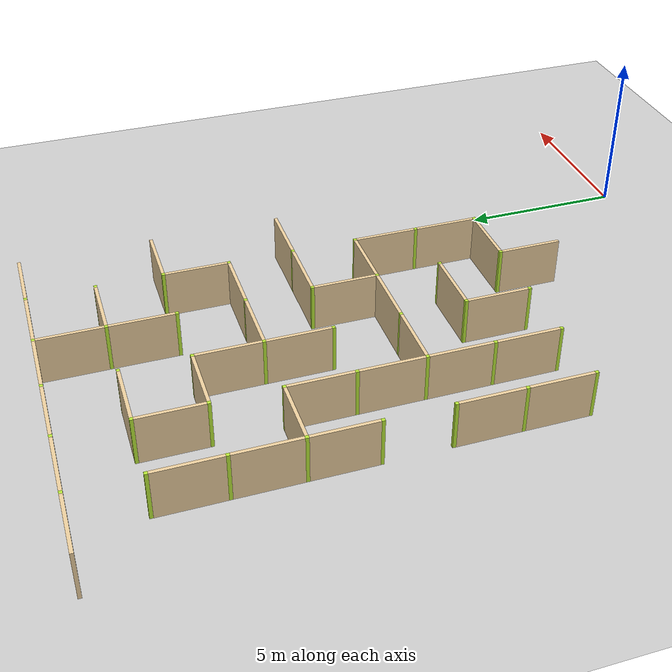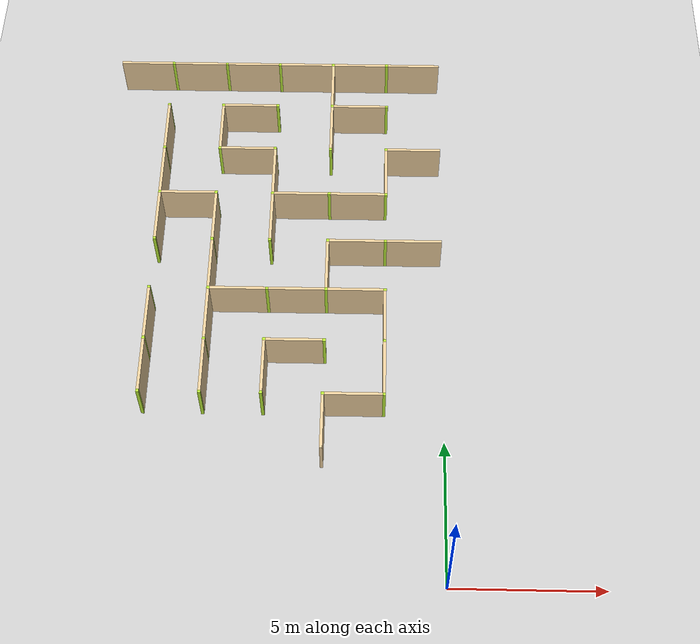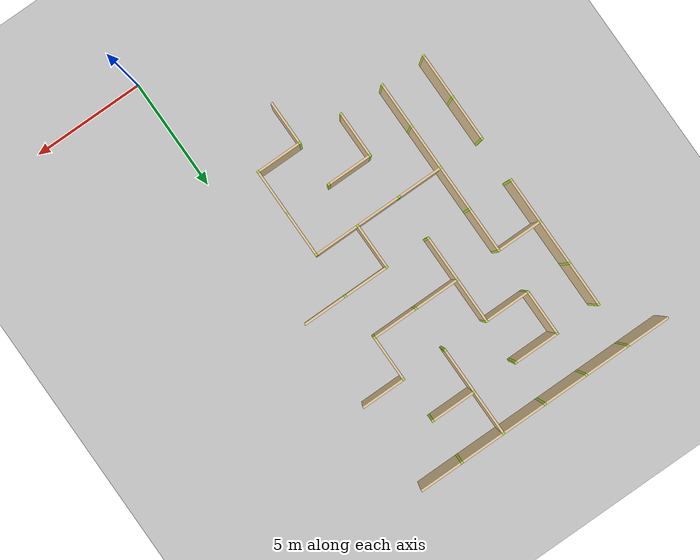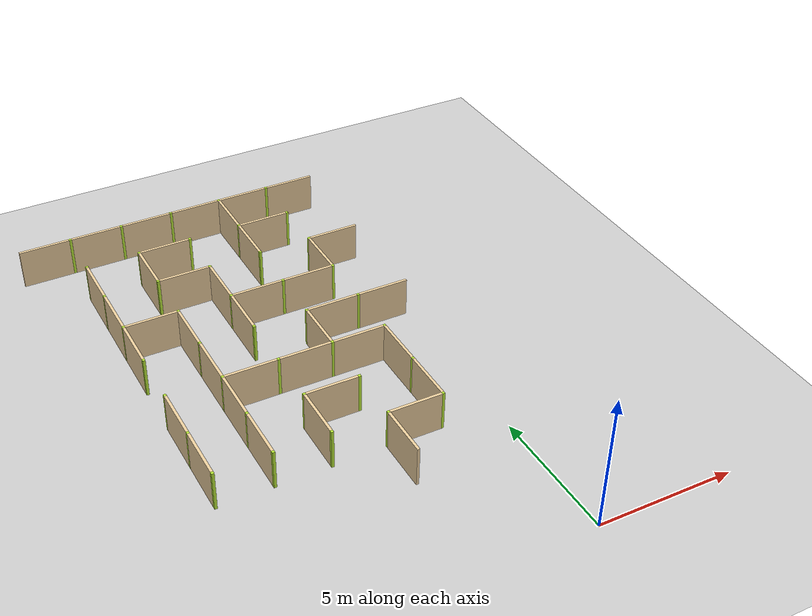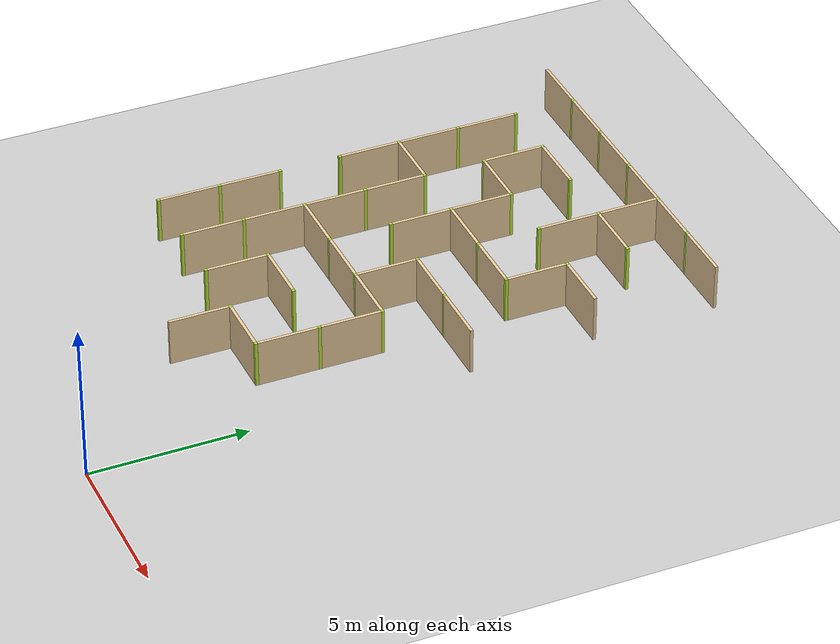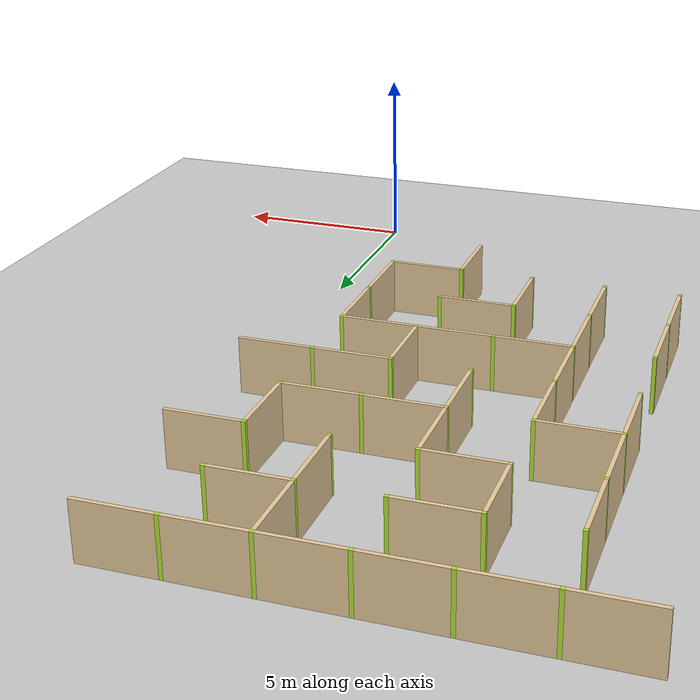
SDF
<sdf version="1.4">
 <world name="maze_world">
  <model name="ground">
   <static>true</static>
   <link name="ground_link">
    <collision name="collision1"><geometry><plane><normal>0 0 1</normal></plane></geometry></collision>
    <visual name="visual1"><geometry><plane><normal>0 0 1</normal><size>100 100</size></plane></geometry></visual>
   </link>
  </model>
  <model name="Untitled">
   <link name="Wall_4_0_h">
    <collision name="Wall_0_Collision">
     <geometry><box><size>1.9 0.1 1.5</size></box></geometry>
     <pose>0 0 0.75 0 -0 0</pose>
    </collision>
    <visual name="Wall_0_Visual">
     <pose>0 0 0.75 0 -0 0</pose>
     <geometry><box><size>1.9 0.1 1.5</size></box></geometry>
     <material>
      <script><uri>file://media/materials/scripts/gazebo.material</uri><name>Gazebo/Grey</name></script>
      <ambient>0.921569 0.807843 0.615686 1</ambient>
     </material>
     <meta><layer>0</layer></meta>
    </visual>
    <pose>-11.0 20 0 0 -0 0</pose>
   </link>
   <link name="Wall_5_0_h">
    <collision name="Wall_0_Collision">
     <geometry><box><size>1.9 0.1 1.5</size></box></geometry>
     <pose>0 0 0.75 0 -0 0</pose>
    </collision>
    <visual name="Wall_0_Visual">
     <pose>0 0 0.75 0 -0 0</pose>
     <geometry><box><size>1.9 0.1 1.5</size></box></geometry>
     <material>
      <script><uri>file://media/materials/scripts/gazebo.material</uri><name>Gazebo/Grey</name></script>
      <ambient>0.921569 0.807843 0.615686 1</ambient>
     </material>
     <meta><layer>0</layer></meta>
    </visual>
    <pose>-9.0 20 0 0 -0 0</pose>
   </link>
   <link name="Joint_-10_20">
    <collision name="Wall_2_Collision">
     <geometry><box><size>0.1 0.1 1.5</size></box></geometry>
     <pose>0 0 0.75 0 -0 0</pose>
    </collision>
    <visual name="Wall_2_Visual">
     <pose>0 0 0.75 0 -0 0</pose>
     <geometry><box><size>0.1 0.1 1.5</size></box></geometry>
     <material>
      <script><uri>file://media/materials/scripts/gazebo.material</uri><name>Gazebo/Grey</name></script>
      <ambient>0.721569 0.907843 0.215686 1</ambient>
     </material>
     <meta><layer>0</layer></meta>
    </visual>
    <pose>-10 20 0 0 -0 0</pose>
   </link>
   <link name="Wall_6_0_h">
    <collision name="Wall_0_Collision">
     <geometry><box><size>1.9 0.1 1.5</size></box></geometry>
     <pose>0 0 0.75 0 -0 0</pose>
    </collision>
    <visual name="Wall_0_Visual">
     <pose>0 0 0.75 0 -0 0</pose>
     <geometry><box><size>1.9 0.1 1.5</size></box></geometry>
     <material>
      <script><uri>file://media/materials/scripts/gazebo.material</uri><name>Gazebo/Grey</name></script>
      <ambient>0.921569 0.807843 0.615686 1</ambient>
     </material>
     <meta><layer>0</layer></meta>
    </visual>
    <pose>-7.0 20 0 0 -0 0</pose>
   </link>
   <link name="Joint_-8_20">
    <collision name="Wall_2_Collision">
     <geometry><box><size>0.1 0.1 1.5</size></box></geometry>
     <pose>0 0 0.75 0 -0 0</pose>
    </collision>
    <visual name="Wall_2_Visual">
     <pose>0 0 0.75 0 -0 0</pose>
     <geometry><box><size>0.1 0.1 1.5</size></box></geometry>
     <material>
      <script><uri>file://media/materials/scripts/gazebo.material</uri><name>Gazebo/Grey</name></script>
      <ambient>0.721569 0.907843 0.215686 1</ambient>
     </material>
     <meta><layer>0</layer></meta>
    </visual>
    <pose>-8 20 0 0 -0 0</pose>
   </link>
   <link name="Wall_7_0_h">
    <collision name="Wall_0_Collision">
     <geometry><box><size>1.9 0.1 1.5</size></box></geometry>
     <pose>0 0 0.75 0 -0 0</pose>
    </collision>
    <visual name="Wall_0_Visual">
     <pose>0 0 0.75 0 -0 0</pose>
     <geometry><box><size>1.9 0.1 1.5</size></box></geometry>
     <material>
      <script><uri>file://media/materials/scripts/gazebo.material</uri><name>Gazebo/Grey</name></script>
      <ambient>0.921569 0.807843 0.615686 1</ambient>
     </material>
     <meta><layer>0</layer></meta>
    </visual>
    <pose>-5.0 20 0 0 -0 0</pose>
   </link>
   <link name="Joint_-6_20">
    <collision name="Wall_2_Collision">
     <geometry><box><size>0.1 0.1 1.5</size></box></geometry>
     <pose>0 0 0.75 0 -0 0</pose>
    </collision>
    <visual name="Wall_2_Visual">
     <pose>0 0 0.75 0 -0 0</pose>
     <geometry><box><size>0.1 0.1 1.5</size></box></geometry>
     <material>
      <script><uri>file://media/materials/scripts/gazebo.material</uri><name>Gazebo/Grey</name></script>
      <ambient>0.721569 0.907843 0.215686 1</ambient>
     </material>
     <meta><layer>0</layer></meta>
    </visual>
    <pose>-6 20 0 0 -0 0</pose>
   </link>
   <link name="Wall_8_0_h">
    <collision name="Wall_0_Collision">
     <geometry><box><size>1.9 0.1 1.5</size></box></geometry>
     <pose>0 0 0.75 0 -0 0</pose>
    </collision>
    <visual name="Wall_0_Visual">
     <pose>0 0 0.75 0 -0 0</pose>
     <geometry><box><size>1.9 0.1 1.5</size></box></geometry>
     <material>
      <script><uri>file://media/materials/scripts/gazebo.material</uri><name>Gazebo/Grey</name></script>
      <ambient>0.921569 0.807843 0.615686 1</ambient>
     </material>
     <meta><layer>0</layer></meta>
    </visual>
    <pose>-3.0 20 0 0 -0 0</pose>
   </link>
   <link name="Wall_8_0_v">
    <collision name="Wall_0_Collision">
     <geometry><box><size>1.9 0.1 1.5</size></box></geometry>
     <pose>0 0 0.75 0 -0 0</pose>
    </collision>
    <visual name="Wall_0_Visual">
     <pose>0 0 0.75 0 -0 0</pose>
     <geometry><box><size>1.9 0.1 1.5</size></box></geometry>
     <material>
      <script><uri>file://media/materials/scripts/gazebo.material</uri><name>Gazebo/Grey</name></script>
      <ambient>0.921569 0.807843 0.615686 1</ambient>
     </material>
     <meta><layer>0</layer></meta>
    </visual>
    <pose>-4 19.0 0 0 -0 1.5708</pose>
   </link>
   <link name="Joint_-4_20">
    <collision name="Wall_2_Collision">
     <geometry><box><size>0.1 0.1 1.5</size></box></geometry>
     <pose>0 0 0.75 0 -0 0</pose>
    </collision>
    <visual name="Wall_2_Visual">
     <pose>0 0 0.75 0 -0 0</pose>
     <geometry><box><size>0.1 0.1 1.5</size></box></geometry>
     <material>
      <script><uri>file://media/materials/scripts/gazebo.material</uri><name>Gazebo/Grey</name></script>
      <ambient>0.721569 0.907843 0.215686 1</ambient>
     </material>
     <meta><layer>0</layer></meta>
    </visual>
    <pose>-4 20 0 0 -0 0</pose>
   </link>
   <link name="Wall_9_0_h">
    <collision name="Wall_0_Collision">
     <geometry><box><size>1.9 0.1 1.5</size></box></geometry>
     <pose>0 0 0.75 0 -0 0</pose>
    </collision>
    <visual name="Wall_0_Visual">
     <pose>0 0 0.75 0 -0 0</pose>
     <geometry><box><size>1.9 0.1 1.5</size></box></geometry>
     <material>
      <script><uri>file://media/materials/scripts/gazebo.material</uri><name>Gazebo/Grey</name></script>
      <ambient>0.921569 0.807843 0.615686 1</ambient>
     </material>
     <meta><layer>0</layer></meta>
    </visual>
    <pose>-1.0 20 0 0 -0 0</pose>
   </link>
   <link name="Joint_-2_20">
    <collision name="Wall_2_Collision">
     <geometry><box><size>0.1 0.1 1.5</size></box></geometry>
     <pose>0 0 0.75 0 -0 0</pose>
    </collision>
    <visual name="Wall_2_Visual">
     <pose>0 0 0.75 0 -0 0</pose>
     <geometry><box><size>0.1 0.1 1.5</size></box></geometry>
     <material>
      <script><uri>file://media/materials/scripts/gazebo.material</uri><name>Gazebo/Grey</name></script>
      <ambient>0.721569 0.907843 0.215686 1</ambient>
     </material>
     <meta><layer>0</layer></meta>
    </visual>
    <pose>-2 20 0 0 -0 0</pose>
   </link>
   <link name="Wall_5_1_v">
    <collision name="Wall_0_Collision">
     <geometry><box><size>1.9 0.1 1.5</size></box></geometry>
     <pose>0 0 0.75 0 -0 0</pose>
    </collision>
    <visual name="Wall_0_Visual">
     <pose>0 0 0.75 0 -0 0</pose>
     <geometry><box><size>1.9 0.1 1.5</size></box></geometry>
     <material>
      <script><uri>file://media/materials/scripts/gazebo.material</uri><name>Gazebo/Grey</name></script>
      <ambient>0.921569 0.807843 0.615686 1</ambient>
     </material>
     <meta><layer>0</layer></meta>
    </visual>
    <pose>-10 17.0 0 0 -0 1.5708</pose>
   </link>
   <link name="Joint_-10_18">
    <collision name="Wall_2_Collision">
     <geometry><box><size>0.1 0.1 1.5</size></box></geometry>
     <pose>0 0 0.75 0 -0 0</pose>
    </collision>
    <visual name="Wall_2_Visual">
     <pose>0 0 0.75 0 -0 0</pose>
     <geometry><box><size>0.1 0.1 1.5</size></box></geometry>
     <material>
      <script><uri>file://media/materials/scripts/gazebo.material</uri><name>Gazebo/Grey</name></script>
      <ambient>0.721569 0.907843 0.215686 1</ambient>
     </material>
     <meta><layer>0</layer></meta>
    </visual>
    <pose>-10 18 0 0 -0 0</pose>
   </link>
   <link name="Wall_6_1_h">
    <collision name="Wall_0_Collision">
     <geometry><box><size>1.9 0.1 1.5</size></box></geometry>
     <pose>0 0 0.75 0 -0 0</pose>
    </collision>
    <visual name="Wall_0_Visual">
     <pose>0 0 0.75 0 -0 0</pose>
     <geometry><box><size>1.9 0.1 1.5</size></box></geometry>
     <material>
      <script><uri>file://media/materials/scripts/gazebo.material</uri><name>Gazebo/Grey</name></script>
      <ambient>0.921569 0.807843 0.615686 1</ambient>
     </material>
     <meta><layer>0</layer></meta>
    </visual>
    <pose>-7.0 18 0 0 -0 0</pose>
   </link>
   <link name="Wall_6_1_v">
    <collision name="Wall_0_Collision">
     <geometry><box><size>1.9 0.1 1.5</size></box></geometry>
     <pose>0 0 0.75 0 -0 0</pose>
    </collision>
    <visual name="Wall_0_Visual">
     <pose>0 0 0.75 0 -0 0</pose>
     <geometry><box><size>1.9 0.1 1.5</size></box></geometry>
     <material>
      <script><uri>file://media/materials/scripts/gazebo.material</uri><name>Gazebo/Grey</name></script>
      <ambient>0.921569 0.807843 0.615686 1</ambient>
     </material>
     <meta><layer>0</layer></meta>
    </visual>
    <pose>-8 17.0 0 0 -0 1.5708</pose>
   </link>
   <link name="Joint_-8_18">
    <collision name="Wall_2_Collision">
     <geometry><box><size>0.1 0.1 1.5</size></box></geometry>
     <pose>0 0 0.75 0 -0 0</pose>
    </collision>
    <visual name="Wall_2_Visual">
     <pose>0 0 0.75 0 -0 0</pose>
     <geometry><box><size>0.1 0.1 1.5</size></box></geometry>
     <material>
      <script><uri>file://media/materials/scripts/gazebo.material</uri><name>Gazebo/Grey</name></script>
      <ambient>0.721569 0.907843 0.215686 1</ambient>
     </material>
     <meta><layer>0</layer></meta>
    </visual>
    <pose>-8 18 0 0 -0 0</pose>
   </link>
   <link name="Joint_-6_18">
    <collision name="Wall_2_Collision">
     <geometry><box><size>0.1 0.1 1.5</size></box></geometry>
     <pose>0 0 0.75 0 -0 0</pose>
    </collision>
    <visual name="Wall_2_Visual">
     <pose>0 0 0.75 0 -0 0</pose>
     <geometry><box><size>0.1 0.1 1.5</size></box></geometry>
     <material>
      <script><uri>file://media/materials/scripts/gazebo.material</uri><name>Gazebo/Grey</name></script>
      <ambient>0.721569 0.907843 0.215686 1</ambient>
     </material>
     <meta><layer>0</layer></meta>
    </visual>
    <pose>-6 18 0 0 -0 0</pose>
   </link>
   <link name="Wall_8_1_h">
    <collision name="Wall_0_Collision">
     <geometry><box><size>1.9 0.1 1.5</size></box></geometry>
     <pose>0 0 0.75 0 -0 0</pose>
    </collision>
    <visual name="Wall_0_Visual">
     <pose>0 0 0.75 0 -0 0</pose>
     <geometry><box><size>1.9 0.1 1.5</size></box></geometry>
     <material>
      <script><uri>file://media/materials/scripts/gazebo.material</uri><name>Gazebo/Grey</name></script>
      <ambient>0.921569 0.807843 0.615686 1</ambient>
     </material>
     <meta><layer>0</layer></meta>
    </visual>
    <pose>-3.0 18 0 0 -0 0</pose>
   </link>
   <link name="Wall_8_1_v">
    <collision name="Wall_0_Collision">
     <geometry><box><size>1.9 0.1 1.5</size></box></geometry>
     <pose>0 0 0.75 0 -0 0</pose>
    </collision>
    <visual name="Wall_0_Visual">
     <pose>0 0 0.75 0 -0 0</pose>
     <geometry><box><size>1.9 0.1 1.5</size></box></geometry>
     <material>
      <script><uri>file://media/materials/scripts/gazebo.material</uri><name>Gazebo/Grey</name></script>
      <ambient>0.921569 0.807843 0.615686 1</ambient>
     </material>
     <meta><layer>0</layer></meta>
    </visual>
    <pose>-4 17.0 0 0 -0 1.5708</pose>
   </link>
   <link name="Joint_-4_18">
    <collision name="Wall_2_Collision">
     <geometry><box><size>0.1 0.1 1.5</size></box></geometry>
     <pose>0 0 0.75 0 -0 0</pose>
    </collision>
    <visual name="Wall_2_Visual">
     <pose>0 0 0.75 0 -0 0</pose>
     <geometry><box><size>0.1 0.1 1.5</size></box></geometry>
     <material>
      <script><uri>file://media/materials/scripts/gazebo.material</uri><name>Gazebo/Grey</name></script>
      <ambient>0.721569 0.907843 0.215686 1</ambient>
     </material>
     <meta><layer>0</layer></meta>
    </visual>
    <pose>-4 18 0 0 -0 0</pose>
   </link>
   <link name="Joint_-2_18">
    <collision name="Wall_2_Collision">
     <geometry><box><size>0.1 0.1 1.5</size></box></geometry>
     <pose>0 0 0.75 0 -0 0</pose>
    </collision>
    <visual name="Wall_2_Visual">
     <pose>0 0 0.75 0 -0 0</pose>
     <geometry><box><size>0.1 0.1 1.5</size></box></geometry>
     <material>
      <script><uri>file://media/materials/scripts/gazebo.material</uri><name>Gazebo/Grey</name></script>
      <ambient>0.721569 0.907843 0.215686 1</ambient>
     </material>
     <meta><layer>0</layer></meta>
    </visual>
    <pose>-2 18 0 0 -0 0</pose>
   </link>
   <link name="Wall_5_2_v">
    <collision name="Wall_0_Collision">
     <geometry><box><size>1.9 0.1 1.5</size></box></geometry>
     <pose>0 0 0.75 0 -0 0</pose>
    </collision>
    <visual name="Wall_0_Visual">
     <pose>0 0 0.75 0 -0 0</pose>
     <geometry><box><size>1.9 0.1 1.5</size></box></geometry>
     <material>
      <script><uri>file://media/materials/scripts/gazebo.material</uri><name>Gazebo/Grey</name></script>
      <ambient>0.921569 0.807843 0.615686 1</ambient>
     </material>
     <meta><layer>0</layer></meta>
    </visual>
    <pose>-10 15.0 0 0 -0 1.5708</pose>
   </link>
   <link name="Joint_-10_16">
    <collision name="Wall_2_Collision">
     <geometry><box><size>0.1 0.1 1.5</size></box></geometry>
     <pose>0 0 0.75 0 -0 0</pose>
    </collision>
    <visual name="Wall_2_Visual">
     <pose>0 0 0.75 0 -0 0</pose>
     <geometry><box><size>0.1 0.1 1.5</size></box></geometry>
     <material>
      <script><uri>file://media/materials/scripts/gazebo.material</uri><name>Gazebo/Grey</name></script>
      <ambient>0.721569 0.907843 0.215686 1</ambient>
     </material>
     <meta><layer>0</layer></meta>
    </visual>
    <pose>-10 16 0 0 -0 0</pose>
   </link>
   <link name="Wall_6_2_h">
    <collision name="Wall_0_Collision">
     <geometry><box><size>1.9 0.1 1.5</size></box></geometry>
     <pose>0 0 0.75 0 -0 0</pose>
    </collision>
    <visual name="Wall_0_Visual">
     <pose>0 0 0.75 0 -0 0</pose>
     <geometry><box><size>1.9 0.1 1.5</size></box></geometry>
     <material>
      <script><uri>file://media/materials/scripts/gazebo.material</uri><name>Gazebo/Grey</name></script>
      <ambient>0.921569 0.807843 0.615686 1</ambient>
     </material>
     <meta><layer>0</layer></meta>
    </visual>
    <pose>-7.0 16 0 0 -0 0</pose>
   </link>
   <link name="Joint_-8_16">
    <collision name="Wall_2_Collision">
     <geometry><box><size>0.1 0.1 1.5</size></box></geometry>
     <pose>0 0 0.75 0 -0 0</pose>
    </collision>
    <visual name="Wall_2_Visual">
     <pose>0 0 0.75 0 -0 0</pose>
     <geometry><box><size>0.1 0.1 1.5</size></box></geometry>
     <material>
      <script><uri>file://media/materials/scripts/gazebo.material</uri><name>Gazebo/Grey</name></script>
      <ambient>0.721569 0.907843 0.215686 1</ambient>
     </material>
     <meta><layer>0</layer></meta>
    </visual>
    <pose>-8 16 0 0 -0 0</pose>
   </link>
   <link name="Wall_7_2_v">
    <collision name="Wall_0_Collision">
     <geometry><box><size>1.9 0.1 1.5</size></box></geometry>
     <pose>0 0 0.75 0 -0 0</pose>
    </collision>
    <visual name="Wall_0_Visual">
     <pose>0 0 0.75 0 -0 0</pose>
     <geometry><box><size>1.9 0.1 1.5</size></box></geometry>
     <material>
      <script><uri>file://media/materials/scripts/gazebo.material</uri><name>Gazebo/Grey</name></script>
      <ambient>0.921569 0.807843 0.615686 1</ambient>
     </material>
     <meta><layer>0</layer></meta>
    </visual>
    <pose>-6 15.0 0 0 -0 1.5708</pose>
   </link>
   <link name="Joint_-6_16">
    <collision name="Wall_2_Collision">
     <geometry><box><size>0.1 0.1 1.5</size></box></geometry>
     <pose>0 0 0.75 0 -0 0</pose>
    </collision>
    <visual name="Wall_2_Visual">
     <pose>0 0 0.75 0 -0 0</pose>
     <geometry><box><size>0.1 0.1 1.5</size></box></geometry>
     <material>
      <script><uri>file://media/materials/scripts/gazebo.material</uri><name>Gazebo/Grey</name></script>
      <ambient>0.721569 0.907843 0.215686 1</ambient>
     </material>
     <meta><layer>0</layer></meta>
    </visual>
    <pose>-6 16 0 0 -0 0</pose>
   </link>
   <link name="Joint_-4_16">
    <collision name="Wall_2_Collision">
     <geometry><box><size>0.1 0.1 1.5</size></box></geometry>
     <pose>0 0 0.75 0 -0 0</pose>
    </collision>
    <visual name="Wall_2_Visual">
     <pose>0 0 0.75 0 -0 0</pose>
     <geometry><box><size>0.1 0.1 1.5</size></box></geometry>
     <material>
      <script><uri>file://media/materials/scripts/gazebo.material</uri><name>Gazebo/Grey</name></script>
      <ambient>0.721569 0.907843 0.215686 1</ambient>
     </material>
     <meta><layer>0</layer></meta>
    </visual>
    <pose>-4 16 0 0 -0 0</pose>
   </link>
   <link name="Wall_9_2_h">
    <collision name="Wall_0_Collision">
     <geometry><box><size>1.9 0.1 1.5</size></box></geometry>
     <pose>0 0 0.75 0 -0 0</pose>
    </collision>
    <visual name="Wall_0_Visual">
     <pose>0 0 0.75 0 -0 0</pose>
     <geometry><box><size>1.9 0.1 1.5</size></box></geometry>
     <material>
      <script><uri>file://media/materials/scripts/gazebo.material</uri><name>Gazebo/Grey</name></script>
      <ambient>0.921569 0.807843 0.615686 1</ambient>
     </material>
     <meta><layer>0</layer></meta>
    </visual>
    <pose>-1.0 16 0 0 -0 0</pose>
   </link>
   <link name="Wall_9_2_v">
    <collision name="Wall_0_Collision">
     <geometry><box><size>1.9 0.1 1.5</size></box></geometry>
     <pose>0 0 0.75 0 -0 0</pose>
    </collision>
    <visual name="Wall_0_Visual">
     <pose>0 0 0.75 0 -0 0</pose>
     <geometry><box><size>1.9 0.1 1.5</size></box></geometry>
     <material>
      <script><uri>file://media/materials/scripts/gazebo.material</uri><name>Gazebo/Grey</name></script>
      <ambient>0.921569 0.807843 0.615686 1</ambient>
     </material>
     <meta><layer>0</layer></meta>
    </visual>
    <pose>-2 15.0 0 0 -0 1.5708</pose>
   </link>
   <link name="Joint_-2_16">
    <collision name="Wall_2_Collision">
     <geometry><box><size>0.1 0.1 1.5</size></box></geometry>
     <pose>0 0 0.75 0 -0 0</pose>
    </collision>
    <visual name="Wall_2_Visual">
     <pose>0 0 0.75 0 -0 0</pose>
     <geometry><box><size>0.1 0.1 1.5</size></box></geometry>
     <material>
      <script><uri>file://media/materials/scripts/gazebo.material</uri><name>Gazebo/Grey</name></script>
      <ambient>0.721569 0.907843 0.215686 1</ambient>
     </material>
     <meta><layer>0</layer></meta>
    </visual>
    <pose>-2 16 0 0 -0 0</pose>
   </link>
   <link name="Wall_5_3_h">
    <collision name="Wall_0_Collision">
     <geometry><box><size>1.9 0.1 1.5</size></box></geometry>
     <pose>0 0 0.75 0 -0 0</pose>
    </collision>
    <visual name="Wall_0_Visual">
     <pose>0 0 0.75 0 -0 0</pose>
     <geometry><box><size>1.9 0.1 1.5</size></box></geometry>
     <material>
      <script><uri>file://media/materials/scripts/gazebo.material</uri><name>Gazebo/Grey</name></script>
      <ambient>0.921569 0.807843 0.615686 1</ambient>
     </material>
     <meta><layer>0</layer></meta>
    </visual>
    <pose>-9.0 14 0 0 -0 0</pose>
   </link>
   <link name="Wall_5_3_v">
    <collision name="Wall_0_Collision">
     <geometry><box><size>1.9 0.1 1.5</size></box></geometry>
     <pose>0 0 0.75 0 -0 0</pose>
    </collision>
    <visual name="Wall_0_Visual">
     <pose>0 0 0.75 0 -0 0</pose>
     <geometry><box><size>1.9 0.1 1.5</size></box></geometry>
     <material>
      <script><uri>file://media/materials/scripts/gazebo.material</uri><name>Gazebo/Grey</name></script>
      <ambient>0.921569 0.807843 0.615686 1</ambient>
     </material>
     <meta><layer>0</layer></meta>
    </visual>
    <pose>-10 13.0 0 0 -0 1.5708</pose>
   </link>
   <link name="Joint_-10_14">
    <collision name="Wall_2_Collision">
     <geometry><box><size>0.1 0.1 1.5</size></box></geometry>
     <pose>0 0 0.75 0 -0 0</pose>
    </collision>
    <visual name="Wall_2_Visual">
     <pose>0 0 0.75 0 -0 0</pose>
     <geometry><box><size>0.1 0.1 1.5</size></box></geometry>
     <material>
      <script><uri>file://media/materials/scripts/gazebo.material</uri><name>Gazebo/Grey</name></script>
      <ambient>0.721569 0.907843 0.215686 1</ambient>
     </material>
     <meta><layer>0</layer></meta>
    </visual>
    <pose>-10 14 0 0 -0 0</pose>
   </link>
   <link name="Wall_6_3_v">
    <collision name="Wall_0_Collision">
     <geometry><box><size>1.9 0.1 1.5</size></box></geometry>
     <pose>0 0 0.75 0 -0 0</pose>
    </collision>
    <visual name="Wall_0_Visual">
     <pose>0 0 0.75 0 -0 0</pose>
     <geometry><box><size>1.9 0.1 1.5</size></box></geometry>
     <material>
      <script><uri>file://media/materials/scripts/gazebo.material</uri><name>Gazebo/Grey</name></script>
      <ambient>0.921569 0.807843 0.615686 1</ambient>
     </material>
     <meta><layer>0</layer></meta>
    </visual>
    <pose>-8 13.0 0 0 -0 1.5708</pose>
   </link>
   <link name="Joint_-8_14">
    <collision name="Wall_2_Collision">
     <geometry><box><size>0.1 0.1 1.5</size></box></geometry>
     <pose>0 0 0.75 0 -0 0</pose>
    </collision>
    <visual name="Wall_2_Visual">
     <pose>0 0 0.75 0 -0 0</pose>
     <geometry><box><size>0.1 0.1 1.5</size></box></geometry>
     <material>
      <script><uri>file://media/materials/scripts/gazebo.material</uri><name>Gazebo/Grey</name></script>
      <ambient>0.721569 0.907843 0.215686 1</ambient>
     </material>
     <meta><layer>0</layer></meta>
    </visual>
    <pose>-8 14 0 0 -0 0</pose>
   </link>
   <link name="Wall_7_3_h">
    <collision name="Wall_0_Collision">
     <geometry><box><size>1.9 0.1 1.5</size></box></geometry>
     <pose>0 0 0.75 0 -0 0</pose>
    </collision>
    <visual name="Wall_0_Visual">
     <pose>0 0 0.75 0 -0 0</pose>
     <geometry><box><size>1.9 0.1 1.5</size></box></geometry>
     <material>
      <script><uri>file://media/materials/scripts/gazebo.material</uri><name>Gazebo/Grey</name></script>
      <ambient>0.921569 0.807843 0.615686 1</ambient>
     </material>
     <meta><layer>0</layer></meta>
    </visual>
    <pose>-5.0 14 0 0 -0 0</pose>
   </link>
   <link name="Wall_7_3_v">
    <collision name="Wall_0_Collision">
     <geometry><box><size>1.9 0.1 1.5</size></box></geometry>
     <pose>0 0 0.75 0 -0 0</pose>
    </collision>
    <visual name="Wall_0_Visual">
     <pose>0 0 0.75 0 -0 0</pose>
     <geometry><box><size>1.9 0.1 1.5</size></box></geometry>
     <material>
      <script><uri>file://media/materials/scripts/gazebo.material</uri><name>Gazebo/Grey</name></script>
      <ambient>0.921569 0.807843 0.615686 1</ambient>
     </material>
     <meta><layer>0</layer></meta>
    </visual>
    <pose>-6 13.0 0 0 -0 1.5708</pose>
   </link>
   <link name="Joint_-6_14">
    <collision name="Wall_2_Collision">
     <geometry><box><size>0.1 0.1 1.5</size></box></geometry>
     <pose>0 0 0.75 0 -0 0</pose>
    </collision>
    <visual name="Wall_2_Visual">
     <pose>0 0 0.75 0 -0 0</pose>
     <geometry><box><size>0.1 0.1 1.5</size></box></geometry>
     <material>
      <script><uri>file://media/materials/scripts/gazebo.material</uri><name>Gazebo/Grey</name></script>
      <ambient>0.721569 0.907843 0.215686 1</ambient>
     </material>
     <meta><layer>0</layer></meta>
    </visual>
    <pose>-6 14 0 0 -0 0</pose>
   </link>
   <link name="Wall_8_3_h">
    <collision name="Wall_0_Collision">
     <geometry><box><size>1.9 0.1 1.5</size></box></geometry>
     <pose>0 0 0.75 0 -0 0</pose>
    </collision>
    <visual name="Wall_0_Visual">
     <pose>0 0 0.75 0 -0 0</pose>
     <geometry><box><size>1.9 0.1 1.5</size></box></geometry>
     <material>
      <script><uri>file://media/materials/scripts/gazebo.material</uri><name>Gazebo/Grey</name></script>
      <ambient>0.921569 0.807843 0.615686 1</ambient>
     </material>
     <meta><layer>0</layer></meta>
    </visual>
    <pose>-3.0 14 0 0 -0 0</pose>
   </link>
   <link name="Joint_-4_14">
    <collision name="Wall_2_Collision">
     <geometry><box><size>0.1 0.1 1.5</size></box></geometry>
     <pose>0 0 0.75 0 -0 0</pose>
    </collision>
    <visual name="Wall_2_Visual">
     <pose>0 0 0.75 0 -0 0</pose>
     <geometry><box><size>0.1 0.1 1.5</size></box></geometry>
     <material>
      <script><uri>file://media/materials/scripts/gazebo.material</uri><name>Gazebo/Grey</name></script>
      <ambient>0.721569 0.907843 0.215686 1</ambient>
     </material>
     <meta><layer>0</layer></meta>
    </visual>
    <pose>-4 14 0 0 -0 0</pose>
   </link>
   <link name="Joint_-2_14">
    <collision name="Wall_2_Collision">
     <geometry><box><size>0.1 0.1 1.5</size></box></geometry>
     <pose>0 0 0.75 0 -0 0</pose>
    </collision>
    <visual name="Wall_2_Visual">
     <pose>0 0 0.75 0 -0 0</pose>
     <geometry><box><size>0.1 0.1 1.5</size></box></geometry>
     <material>
      <script><uri>file://media/materials/scripts/gazebo.material</uri><name>Gazebo/Grey</name></script>
      <ambient>0.721569 0.907843 0.215686 1</ambient>
     </material>
     <meta><layer>0</layer></meta>
    </visual>
    <pose>-2 14 0 0 -0 0</pose>
   </link>
   <link name="Joint_-10_12">
    <collision name="Wall_2_Collision">
     <geometry><box><size>0.1 0.1 1.5</size></box></geometry>
     <pose>0 0 0.75 0 -0 0</pose>
    </collision>
    <visual name="Wall_2_Visual">
     <pose>0 0 0.75 0 -0 0</pose>
     <geometry><box><size>0.1 0.1 1.5</size></box></geometry>
     <material>
      <script><uri>file://media/materials/scripts/gazebo.material</uri><name>Gazebo/Grey</name></script>
      <ambient>0.721569 0.907843 0.215686 1</ambient>
     </material>
     <meta><layer>0</layer></meta>
    </visual>
    <pose>-10 12 0 0 -0 0</pose>
   </link>
   <link name="Wall_6_4_v">
    <collision name="Wall_0_Collision">
     <geometry><box><size>1.9 0.1 1.5</size></box></geometry>
     <pose>0 0 0.75 0 -0 0</pose>
    </collision>
    <visual name="Wall_0_Visual">
     <pose>0 0 0.75 0 -0 0</pose>
     <geometry><box><size>1.9 0.1 1.5</size></box></geometry>
     <material>
      <script><uri>file://media/materials/scripts/gazebo.material</uri><name>Gazebo/Grey</name></script>
      <ambient>0.921569 0.807843 0.615686 1</ambient>
     </material>
     <meta><layer>0</layer></meta>
    </visual>
    <pose>-8 11.0 0 0 -0 1.5708</pose>
   </link>
   <link name="Joint_-8_12">
    <collision name="Wall_2_Collision">
     <geometry><box><size>0.1 0.1 1.5</size></box></geometry>
     <pose>0 0 0.75 0 -0 0</pose>
    </collision>
    <visual name="Wall_2_Visual">
     <pose>0 0 0.75 0 -0 0</pose>
     <geometry><box><size>0.1 0.1 1.5</size></box></geometry>
     <material>
      <script><uri>file://media/materials/scripts/gazebo.material</uri><name>Gazebo/Grey</name></script>
      <ambient>0.721569 0.907843 0.215686 1</ambient>
     </material>
     <meta><layer>0</layer></meta>
    </visual>
    <pose>-8 12 0 0 -0 0</pose>
   </link>
   <link name="Joint_-6_12">
    <collision name="Wall_2_Collision">
     <geometry><box><size>0.1 0.1 1.5</size></box></geometry>
     <pose>0 0 0.75 0 -0 0</pose>
    </collision>
    <visual name="Wall_2_Visual">
     <pose>0 0 0.75 0 -0 0</pose>
     <geometry><box><size>0.1 0.1 1.5</size></box></geometry>
     <material>
      <script><uri>file://media/materials/scripts/gazebo.material</uri><name>Gazebo/Grey</name></script>
      <ambient>0.721569 0.907843 0.215686 1</ambient>
     </material>
     <meta><layer>0</layer></meta>
    </visual>
    <pose>-6 12 0 0 -0 0</pose>
   </link>
   <link name="Wall_8_4_h">
    <collision name="Wall_0_Collision">
     <geometry><box><size>1.9 0.1 1.5</size></box></geometry>
     <pose>0 0 0.75 0 -0 0</pose>
    </collision>
    <visual name="Wall_0_Visual">
     <pose>0 0 0.75 0 -0 0</pose>
     <geometry><box><size>1.9 0.1 1.5</size></box></geometry>
     <material>
      <script><uri>file://media/materials/scripts/gazebo.material</uri><name>Gazebo/Grey</name></script>
      <ambient>0.921569 0.807843 0.615686 1</ambient>
     </material>
     <meta><layer>0</layer></meta>
    </visual>
    <pose>-3.0 12 0 0 -0 0</pose>
   </link>
   <link name="Wall_8_4_v">
    <collision name="Wall_0_Collision">
     <geometry><box><size>1.9 0.1 1.5</size></box></geometry>
     <pose>0 0 0.75 0 -0 0</pose>
    </collision>
    <visual name="Wall_0_Visual">
     <pose>0 0 0.75 0 -0 0</pose>
     <geometry><box><size>1.9 0.1 1.5</size></box></geometry>
     <material>
      <script><uri>file://media/materials/scripts/gazebo.material</uri><name>Gazebo/Grey</name></script>
      <ambient>0.921569 0.807843 0.615686 1</ambient>
     </material>
     <meta><layer>0</layer></meta>
    </visual>
    <pose>-4 11.0 0 0 -0 1.5708</pose>
   </link>
   <link name="Joint_-4_12">
    <collision name="Wall_2_Collision">
     <geometry><box><size>0.1 0.1 1.5</size></box></geometry>
     <pose>0 0 0.75 0 -0 0</pose>
    </collision>
    <visual name="Wall_2_Visual">
     <pose>0 0 0.75 0 -0 0</pose>
     <geometry><box><size>0.1 0.1 1.5</size></box></geometry>
     <material>
      <script><uri>file://media/materials/scripts/gazebo.material</uri><name>Gazebo/Grey</name></script>
      <ambient>0.721569 0.907843 0.215686 1</ambient>
     </material>
     <meta><layer>0</layer></meta>
    </visual>
    <pose>-4 12 0 0 -0 0</pose>
   </link>
   <link name="Wall_9_4_h">
    <collision name="Wall_0_Collision">
     <geometry><box><size>1.9 0.1 1.5</size></box></geometry>
     <pose>0 0 0.75 0 -0 0</pose>
    </collision>
    <visual name="Wall_0_Visual">
     <pose>0 0 0.75 0 -0 0</pose>
     <geometry><box><size>1.9 0.1 1.5</size></box></geometry>
     <material>
      <script><uri>file://media/materials/scripts/gazebo.material</uri><name>Gazebo/Grey</name></script>
      <ambient>0.921569 0.807843 0.615686 1</ambient>
     </material>
     <meta><layer>0</layer></meta>
    </visual>
    <pose>-1.0 12 0 0 -0 0</pose>
   </link>
   <link name="Joint_-2_12">
    <collision name="Wall_2_Collision">
     <geometry><box><size>0.1 0.1 1.5</size></box></geometry>
     <pose>0 0 0.75 0 -0 0</pose>
    </collision>
    <visual name="Wall_2_Visual">
     <pose>0 0 0.75 0 -0 0</pose>
     <geometry><box><size>0.1 0.1 1.5</size></box></geometry>
     <material>
      <script><uri>file://media/materials/scripts/gazebo.material</uri><name>Gazebo/Grey</name></script>
      <ambient>0.721569 0.907843 0.215686 1</ambient>
     </material>
     <meta><layer>0</layer></meta>
    </visual>
    <pose>-2 12 0 0 -0 0</pose>
   </link>
   <link name="Wall_5_5_v">
    <collision name="Wall_0_Collision">
     <geometry><box><size>1.9 0.1 1.5</size></box></geometry>
     <pose>0 0 0.75 0 -0 0</pose>
    </collision>
    <visual name="Wall_0_Visual">
     <pose>0 0 0.75 0 -0 0</pose>
     <geometry><box><size>1.9 0.1 1.5</size></box></geometry>
     <material>
      <script><uri>file://media/materials/scripts/gazebo.material</uri><name>Gazebo/Grey</name></script>
      <ambient>0.921569 0.807843 0.615686 1</ambient>
     </material>
     <meta><layer>0</layer></meta>
    </visual>
    <pose>-10 9.0 0 0 -0 1.5708</pose>
   </link>
   <link name="Joint_-10_10">
    <collision name="Wall_2_Collision">
     <geometry><box><size>0.1 0.1 1.5</size></box></geometry>
     <pose>0 0 0.75 0 -0 0</pose>
    </collision>
    <visual name="Wall_2_Visual">
     <pose>0 0 0.75 0 -0 0</pose>
     <geometry><box><size>0.1 0.1 1.5</size></box></geometry>
     <material>
      <script><uri>file://media/materials/scripts/gazebo.material</uri><name>Gazebo/Grey</name></script>
      <ambient>0.721569 0.907843 0.215686 1</ambient>
     </material>
     <meta><layer>0</layer></meta>
    </visual>
    <pose>-10 10 0 0 -0 0</pose>
   </link>
   <link name="Wall_6_5_h">
    <collision name="Wall_0_Collision">
     <geometry><box><size>1.9 0.1 1.5</size></box></geometry>
     <pose>0 0 0.75 0 -0 0</pose>
    </collision>
    <visual name="Wall_0_Visual">
     <pose>0 0 0.75 0 -0 0</pose>
     <geometry><box><size>1.9 0.1 1.5</size></box></geometry>
     <material>
      <script><uri>file://media/materials/scripts/gazebo.material</uri><name>Gazebo/Grey</name></script>
      <ambient>0.921569 0.807843 0.615686 1</ambient>
     </material>
     <meta><layer>0</layer></meta>
    </visual>
    <pose>-7.0 10 0 0 -0 0</pose>
   </link>
   <link name="Wall_6_5_v">
    <collision name="Wall_0_Collision">
     <geometry><box><size>1.9 0.1 1.5</size></box></geometry>
     <pose>0 0 0.75 0 -0 0</pose>
    </collision>
    <visual name="Wall_0_Visual">
     <pose>0 0 0.75 0 -0 0</pose>
     <geometry><box><size>1.9 0.1 1.5</size></box></geometry>
     <material>
      <script><uri>file://media/materials/scripts/gazebo.material</uri><name>Gazebo/Grey</name></script>
      <ambient>0.921569 0.807843 0.615686 1</ambient>
     </material>
     <meta><layer>0</layer></meta>
    </visual>
    <pose>-8 9.0 0 0 -0 1.5708</pose>
   </link>
   <link name="Joint_-8_10">
    <collision name="Wall_2_Collision">
     <geometry><box><size>0.1 0.1 1.5</size></box></geometry>
     <pose>0 0 0.75 0 -0 0</pose>
    </collision>
    <visual name="Wall_2_Visual">
     <pose>0 0 0.75 0 -0 0</pose>
     <geometry><box><size>0.1 0.1 1.5</size></box></geometry>
     <material>
      <script><uri>file://media/materials/scripts/gazebo.material</uri><name>Gazebo/Grey</name></script>
      <ambient>0.721569 0.907843 0.215686 1</ambient>
     </material>
     <meta><layer>0</layer></meta>
    </visual>
    <pose>-8 10 0 0 -0 0</pose>
   </link>
   <link name="Wall_7_5_h">
    <collision name="Wall_0_Collision">
     <geometry><box><size>1.9 0.1 1.5</size></box></geometry>
     <pose>0 0 0.75 0 -0 0</pose>
    </collision>
    <visual name="Wall_0_Visual">
     <pose>0 0 0.75 0 -0 0</pose>
     <geometry><box><size>1.9 0.1 1.5</size></box></geometry>
     <material>
      <script><uri>file://media/materials/scripts/gazebo.material</uri><name>Gazebo/Grey</name></script>
      <ambient>0.921569 0.807843 0.615686 1</ambient>
     </material>
     <meta><layer>0</layer></meta>
    </visual>
    <pose>-5.0 10 0 0 -0 0</pose>
   </link>
   <link name="Joint_-6_10">
    <collision name="Wall_2_Collision">
     <geometry><box><size>0.1 0.1 1.5</size></box></geometry>
     <pose>0 0 0.75 0 -0 0</pose>
    </collision>
    <visual name="Wall_2_Visual">
     <pose>0 0 0.75 0 -0 0</pose>
     <geometry><box><size>0.1 0.1 1.5</size></box></geometry>
     <material>
      <script><uri>file://media/materials/scripts/gazebo.material</uri><name>Gazebo/Grey</name></script>
      <ambient>0.721569 0.907843 0.215686 1</ambient>
     </material>
     <meta><layer>0</layer></meta>
    </visual>
    <pose>-6 10 0 0 -0 0</pose>
   </link>
   <link name="Wall_8_5_h">
    <collision name="Wall_0_Collision">
     <geometry><box><size>1.9 0.1 1.5</size></box></geometry>
     <pose>0 0 0.75 0 -0 0</pose>
    </collision>
    <visual name="Wall_0_Visual">
     <pose>0 0 0.75 0 -0 0</pose>
     <geometry><box><size>1.9 0.1 1.5</size></box></geometry>
     <material>
      <script><uri>file://media/materials/scripts/gazebo.material</uri><name>Gazebo/Grey</name></script>
      <ambient>0.921569 0.807843 0.615686 1</ambient>
     </material>
     <meta><layer>0</layer></meta>
    </visual>
    <pose>-3.0 10 0 0 -0 0</pose>
   </link>
   <link name="Joint_-4_10">
    <collision name="Wall_2_Collision">
     <geometry><box><size>0.1 0.1 1.5</size></box></geometry>
     <pose>0 0 0.75 0 -0 0</pose>
    </collision>
    <visual name="Wall_2_Visual">
     <pose>0 0 0.75 0 -0 0</pose>
     <geometry><box><size>0.1 0.1 1.5</size></box></geometry>
     <material>
      <script><uri>file://media/materials/scripts/gazebo.material</uri><name>Gazebo/Grey</name></script>
      <ambient>0.721569 0.907843 0.215686 1</ambient>
     </material>
     <meta><layer>0</layer></meta>
    </visual>
    <pose>-4 10 0 0 -0 0</pose>
   </link>
   <link name="Wall_9_5_v">
    <collision name="Wall_0_Collision">
     <geometry><box><size>1.9 0.1 1.5</size></box></geometry>
     <pose>0 0 0.75 0 -0 0</pose>
    </collision>
    <visual name="Wall_0_Visual">
     <pose>0 0 0.75 0 -0 0</pose>
     <geometry><box><size>1.9 0.1 1.5</size></box></geometry>
     <material>
      <script><uri>file://media/materials/scripts/gazebo.material</uri><name>Gazebo/Grey</name></script>
      <ambient>0.921569 0.807843 0.615686 1</ambient>
     </material>
     <meta><layer>0</layer></meta>
    </visual>
    <pose>-2 9.0 0 0 -0 1.5708</pose>
   </link>
   <link name="Joint_-2_10">
    <collision name="Wall_2_Collision">
     <geometry><box><size>0.1 0.1 1.5</size></box></geometry>
     <pose>0 0 0.75 0 -0 0</pose>
    </collision>
    <visual name="Wall_2_Visual">
     <pose>0 0 0.75 0 -0 0</pose>
     <geometry><box><size>0.1 0.1 1.5</size></box></geometry>
     <material>
      <script><uri>file://media/materials/scripts/gazebo.material</uri><name>Gazebo/Grey</name></script>
      <ambient>0.721569 0.907843 0.215686 1</ambient>
     </material>
     <meta><layer>0</layer></meta>
    </visual>
    <pose>-2 10 0 0 -0 0</pose>
   </link>
   <link name="Wall_5_6_v">
    <collision name="Wall_0_Collision">
     <geometry><box><size>1.9 0.1 1.5</size></box></geometry>
     <pose>0 0 0.75 0 -0 0</pose>
    </collision>
    <visual name="Wall_0_Visual">
     <pose>0 0 0.75 0 -0 0</pose>
     <geometry><box><size>1.9 0.1 1.5</size></box></geometry>
     <material>
      <script><uri>file://media/materials/scripts/gazebo.material</uri><name>Gazebo/Grey</name></script>
      <ambient>0.921569 0.807843 0.615686 1</ambient>
     </material>
     <meta><layer>0</layer></meta>
    </visual>
    <pose>-10 7.0 0 0 -0 1.5708</pose>
   </link>
   <link name="Joint_-10_8">
    <collision name="Wall_2_Collision">
     <geometry><box><size>0.1 0.1 1.5</size></box></geometry>
     <pose>0 0 0.75 0 -0 0</pose>
    </collision>
    <visual name="Wall_2_Visual">
     <pose>0 0 0.75 0 -0 0</pose>
     <geometry><box><size>0.1 0.1 1.5</size></box></geometry>
     <material>
      <script><uri>file://media/materials/scripts/gazebo.material</uri><name>Gazebo/Grey</name></script>
      <ambient>0.721569 0.907843 0.215686 1</ambient>
     </material>
     <meta><layer>0</layer></meta>
    </visual>
    <pose>-10 8 0 0 -0 0</pose>
   </link>
   <link name="Wall_6_6_v">
    <collision name="Wall_0_Collision">
     <geometry><box><size>1.9 0.1 1.5</size></box></geometry>
     <pose>0 0 0.75 0 -0 0</pose>
    </collision>
    <visual name="Wall_0_Visual">
     <pose>0 0 0.75 0 -0 0</pose>
     <geometry><box><size>1.9 0.1 1.5</size></box></geometry>
     <material>
      <script><uri>file://media/materials/scripts/gazebo.material</uri><name>Gazebo/Grey</name></script>
      <ambient>0.921569 0.807843 0.615686 1</ambient>
     </material>
     <meta><layer>0</layer></meta>
    </visual>
    <pose>-8 7.0 0 0 -0 1.5708</pose>
   </link>
   <link name="Joint_-8_8">
    <collision name="Wall_2_Collision">
     <geometry><box><size>0.1 0.1 1.5</size></box></geometry>
     <pose>0 0 0.75 0 -0 0</pose>
    </collision>
    <visual name="Wall_2_Visual">
     <pose>0 0 0.75 0 -0 0</pose>
     <geometry><box><size>0.1 0.1 1.5</size></box></geometry>
     <material>
      <script><uri>file://media/materials/scripts/gazebo.material</uri><name>Gazebo/Grey</name></script>
      <ambient>0.721569 0.907843 0.215686 1</ambient>
     </material>
     <meta><layer>0</layer></meta>
    </visual>
    <pose>-8 8 0 0 -0 0</pose>
   </link>
   <link name="Wall_7_6_h">
    <collision name="Wall_0_Collision">
     <geometry><box><size>1.9 0.1 1.5</size></box></geometry>
     <pose>0 0 0.75 0 -0 0</pose>
    </collision>
    <visual name="Wall_0_Visual">
     <pose>0 0 0.75 0 -0 0</pose>
     <geometry><box><size>1.9 0.1 1.5</size></box></geometry>
     <material>
      <script><uri>file://media/materials/scripts/gazebo.material</uri><name>Gazebo/Grey</name></script>
      <ambient>0.921569 0.807843 0.615686 1</ambient>
     </material>
     <meta><layer>0</layer></meta>
    </visual>
    <pose>-5.0 8 0 0 -0 0</pose>
   </link>
   <link name="Wall_7_6_v">
    <collision name="Wall_0_Collision">
     <geometry><box><size>1.9 0.1 1.5</size></box></geometry>
     <pose>0 0 0.75 0 -0 0</pose>
    </collision>
    <visual name="Wall_0_Visual">
     <pose>0 0 0.75 0 -0 0</pose>
     <geometry><box><size>1.9 0.1 1.5</size></box></geometry>
     <material>
      <script><uri>file://media/materials/scripts/gazebo.material</uri><name>Gazebo/Grey</name></script>
      <ambient>0.921569 0.807843 0.615686 1</ambient>
     </material>
     <meta><layer>0</layer></meta>
    </visual>
    <pose>-6 7.0 0 0 -0 1.5708</pose>
   </link>
   <link name="Joint_-6_8">
    <collision name="Wall_2_Collision">
     <geometry><box><size>0.1 0.1 1.5</size></box></geometry>
     <pose>0 0 0.75 0 -0 0</pose>
    </collision>
    <visual name="Wall_2_Visual">
     <pose>0 0 0.75 0 -0 0</pose>
     <geometry><box><size>0.1 0.1 1.5</size></box></geometry>
     <material>
      <script><uri>file://media/materials/scripts/gazebo.material</uri><name>Gazebo/Grey</name></script>
      <ambient>0.721569 0.907843 0.215686 1</ambient>
     </material>
     <meta><layer>0</layer></meta>
    </visual>
    <pose>-6 8 0 0 -0 0</pose>
   </link>
   <link name="Joint_-4_8">
    <collision name="Wall_2_Collision">
     <geometry><box><size>0.1 0.1 1.5</size></box></geometry>
     <pose>0 0 0.75 0 -0 0</pose>
    </collision>
    <visual name="Wall_2_Visual">
     <pose>0 0 0.75 0 -0 0</pose>
     <geometry><box><size>0.1 0.1 1.5</size></box></geometry>
     <material>
      <script><uri>file://media/materials/scripts/gazebo.material</uri><name>Gazebo/Grey</name></script>
      <ambient>0.721569 0.907843 0.215686 1</ambient>
     </material>
     <meta><layer>0</layer></meta>
    </visual>
    <pose>-4 8 0 0 -0 0</pose>
   </link>
   <link name="Wall_9_6_v">
    <collision name="Wall_0_Collision">
     <geometry><box><size>1.9 0.1 1.5</size></box></geometry>
     <pose>0 0 0.75 0 -0 0</pose>
    </collision>
    <visual name="Wall_0_Visual">
     <pose>0 0 0.75 0 -0 0</pose>
     <geometry><box><size>1.9 0.1 1.5</size></box></geometry>
     <material>
      <script><uri>file://media/materials/scripts/gazebo.material</uri><name>Gazebo/Grey</name></script>
      <ambient>0.921569 0.807843 0.615686 1</ambient>
     </material>
     <meta><layer>0</layer></meta>
    </visual>
    <pose>-2 7.0 0 0 -0 1.5708</pose>
   </link>
   <link name="Joint_-2_8">
    <collision name="Wall_2_Collision">
     <geometry><box><size>0.1 0.1 1.5</size></box></geometry>
     <pose>0 0 0.75 0 -0 0</pose>
    </collision>
    <visual name="Wall_2_Visual">
     <pose>0 0 0.75 0 -0 0</pose>
     <geometry><box><size>0.1 0.1 1.5</size></box></geometry>
     <material>
      <script><uri>file://media/materials/scripts/gazebo.material</uri><name>Gazebo/Grey</name></script>
      <ambient>0.721569 0.907843 0.215686 1</ambient>
     </material>
     <meta><layer>0</layer></meta>
    </visual>
    <pose>-2 8 0 0 -0 0</pose>
   </link>
   <link name="Joint_-10_6">
    <collision name="Wall_2_Collision">
     <geometry><box><size>0.1 0.1 1.5</size></box></geometry>
     <pose>0 0 0.75 0 -0 0</pose>
    </collision>
    <visual name="Wall_2_Visual">
     <pose>0 0 0.75 0 -0 0</pose>
     <geometry><box><size>0.1 0.1 1.5</size></box></geometry>
     <material>
      <script><uri>file://media/materials/scripts/gazebo.material</uri><name>Gazebo/Grey</name></script>
      <ambient>0.721569 0.907843 0.215686 1</ambient>
     </material>
     <meta><layer>0</layer></meta>
    </visual>
    <pose>-10 6 0 0 -0 0</pose>
   </link>
   <link name="Joint_-8_6">
    <collision name="Wall_2_Collision">
     <geometry><box><size>0.1 0.1 1.5</size></box></geometry>
     <pose>0 0 0.75 0 -0 0</pose>
    </collision>
    <visual name="Wall_2_Visual">
     <pose>0 0 0.75 0 -0 0</pose>
     <geometry><box><size>0.1 0.1 1.5</size></box></geometry>
     <material>
      <script><uri>file://media/materials/scripts/gazebo.material</uri><name>Gazebo/Grey</name></script>
      <ambient>0.721569 0.907843 0.215686 1</ambient>
     </material>
     <meta><layer>0</layer></meta>
    </visual>
    <pose>-8 6 0 0 -0 0</pose>
   </link>
   <link name="Joint_-6_6">
    <collision name="Wall_2_Collision">
     <geometry><box><size>0.1 0.1 1.5</size></box></geometry>
     <pose>0 0 0.75 0 -0 0</pose>
    </collision>
    <visual name="Wall_2_Visual">
     <pose>0 0 0.75 0 -0 0</pose>
     <geometry><box><size>0.1 0.1 1.5</size></box></geometry>
     <material>
      <script><uri>file://media/materials/scripts/gazebo.material</uri><name>Gazebo/Grey</name></script>
      <ambient>0.721569 0.907843 0.215686 1</ambient>
     </material>
     <meta><layer>0</layer></meta>
    </visual>
    <pose>-6 6 0 0 -0 0</pose>
   </link>
   <link name="Wall_8_7_h">
    <collision name="Wall_0_Collision">
     <geometry><box><size>1.9 0.1 1.5</size></box></geometry>
     <pose>0 0 0.75 0 -0 0</pose>
    </collision>
    <visual name="Wall_0_Visual">
     <pose>0 0 0.75 0 -0 0</pose>
     <geometry><box><size>1.9 0.1 1.5</size></box></geometry>
     <material>
      <script><uri>file://media/materials/scripts/gazebo.material</uri><name>Gazebo/Grey</name></script>
      <ambient>0.921569 0.807843 0.615686 1</ambient>
     </material>
     <meta><layer>0</layer></meta>
    </visual>
    <pose>-3.0 6 0 0 -0 0</pose>
   </link>
   <link name="Wall_8_7_v">
    <collision name="Wall_0_Collision">
     <geometry><box><size>1.9 0.1 1.5</size></box></geometry>
     <pose>0 0 0.75 0 -0 0</pose>
    </collision>
    <visual name="Wall_0_Visual">
     <pose>0 0 0.75 0 -0 0</pose>
     <geometry><box><size>1.9 0.1 1.5</size></box></geometry>
     <material>
      <script><uri>file://media/materials/scripts/gazebo.material</uri><name>Gazebo/Grey</name></script>
      <ambient>0.921569 0.807843 0.615686 1</ambient>
     </material>
     <meta><layer>0</layer></meta>
    </visual>
    <pose>-4 5.0 0 0 -0 1.5708</pose>
   </link>
   <link name="Joint_-4_6">
    <collision name="Wall_2_Collision">
     <geometry><box><size>0.1 0.1 1.5</size></box></geometry>
     <pose>0 0 0.75 0 -0 0</pose>
    </collision>
    <visual name="Wall_2_Visual">
     <pose>0 0 0.75 0 -0 0</pose>
     <geometry><box><size>0.1 0.1 1.5</size></box></geometry>
     <material>
      <script><uri>file://media/materials/scripts/gazebo.material</uri><name>Gazebo/Grey</name></script>
      <ambient>0.721569 0.907843 0.215686 1</ambient>
     </material>
     <meta><layer>0</layer></meta>
    </visual>
    <pose>-4 6 0 0 -0 0</pose>
   </link>
   <link name="Joint_-2_6">
    <collision name="Wall_2_Collision">
     <geometry><box><size>0.1 0.1 1.5</size></box></geometry>
     <pose>0 0 0.75 0 -0 0</pose>
    </collision>
    <visual name="Wall_2_Visual">
     <pose>0 0 0.75 0 -0 0</pose>
     <geometry><box><size>0.1 0.1 1.5</size></box></geometry>
     <material>
      <script><uri>file://media/materials/scripts/gazebo.material</uri><name>Gazebo/Grey</name></script>
      <ambient>0.721569 0.907843 0.215686 1</ambient>
     </material>
     <meta><layer>0</layer></meta>
    </visual>
    <pose>-2 6 0 0 -0 0</pose>
   </link>
   <static>1</static>
  </model>
 </world>
</sdf>
